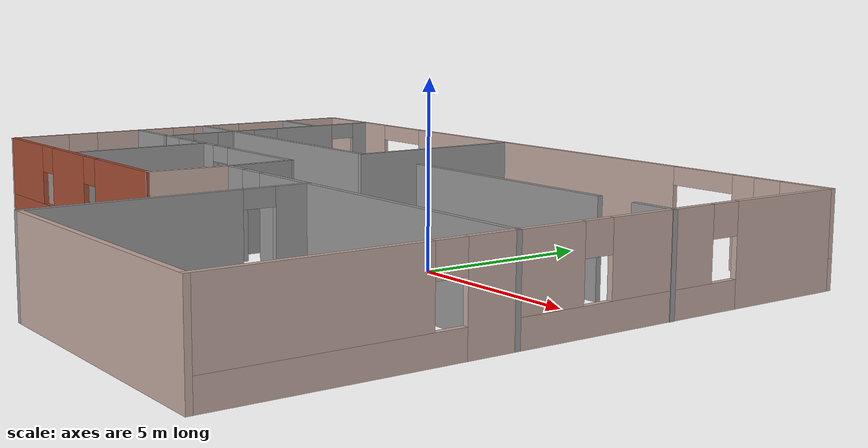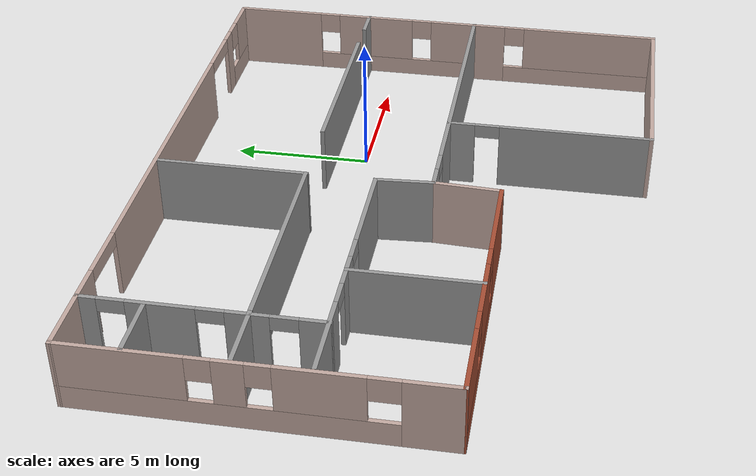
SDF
<?xml version='1.0'?>
<sdf version='1.6'>
  <model name='MyHouse'>
    <pose frame=''>-3.71945 -1.98455 0 0 -0 0</pose>
    <link name='Wall_10'>
      <pose frame=''>-8.45774 0.74582 0 0 -0 3.14159</pose>
      <visual name='Wall_10_Visual_0'>
        <pose frame=''>-1.97921 0 1.25 0 -0 0</pose>
        <geometry>
          <box>
            <size>0.791588 0.15 2.5</size>
          </box>
        </geometry>
        <material>
          <script>
            <uri>file://media/materials/scripts/gazebo.material</uri>
            <name>Gazebo/Grey</name>
          </script>
          <ambient>1 1 1 1</ambient>
        </material>
        <meta>
          <layer>0</layer>
        </meta>
      </visual>
      <collision name='Wall_10_Collision_0'>
        <geometry>
          <box>
            <size>0.791588 0.15 2.5</size>
          </box>
        </geometry>
        <pose frame=''>-1.97921 0 1.25 0 -0 0</pose>
      </collision>
      <visual name='Wall_10_Visual_1'>
        <pose frame=''>0.845794 0 1.25 0 -0 0</pose>
        <geometry>
          <box>
            <size>3.05841 0.15 2.5</size>
          </box>
        </geometry>
        <material>
          <script>
            <uri>file://media/materials/scripts/gazebo.material</uri>
            <name>Gazebo/Grey</name>
          </script>
          <ambient>1 1 1 1</ambient>
        </material>
        <meta>
          <layer>0</layer>
        </meta>
      </visual>
      <collision name='Wall_10_Collision_1'>
        <geometry>
          <box>
            <size>3.05841 0.15 2.5</size>
          </box>
        </geometry>
        <pose frame=''>0.845794 0 1.25 0 -0 0</pose>
      </collision>
      <visual name='Wall_10_Visual_2'>
        <pose frame=''>-1.13341 0 2.25 0 -0 0</pose>
        <geometry>
          <box>
            <size>0.9 0.15 0.5</size>
          </box>
        </geometry>
        <material>
          <script>
            <uri>file://media/materials/scripts/gazebo.material</uri>
            <name>Gazebo/Grey</name>
          </script>
          <ambient>1 1 1 1</ambient>
        </material>
        <meta>
          <layer>0</layer>
        </meta>
      </visual>
      <collision name='Wall_10_Collision_2'>
        <geometry>
          <box>
            <size>0.9 0.15 0.5</size>
          </box>
        </geometry>
        <pose frame=''>-1.13341 0 2.25 0 -0 0</pose>
      </collision>
    </link>
    <link name='Wall_12'>
      <pose frame=''>-3.60774 0.74582 0 0 -0 0</pose>
      <visual name='Wall_12_Visual_0'>
        <pose frame=''>-2.24932 0 1.25 0 -0 0</pose>
        <geometry>
          <box>
            <size>0.751361 0.15 2.5</size>
          </box>
        </geometry>
        <material>
          <script>
            <uri>file://media/materials/scripts/gazebo.material</uri>
            <name>Gazebo/Grey</name>
          </script>
          <ambient>1 1 1 1</ambient>
        </material>
        <meta>
          <layer>0</layer>
        </meta>
      </visual>
      <collision name='Wall_12_Collision_0'>
        <geometry>
          <box>
            <size>0.751361 0.15 2.5</size>
          </box>
        </geometry>
        <pose frame=''>-2.24932 0 1.25 0 -0 0</pose>
      </collision>
      <visual name='Wall_12_Visual_1'>
        <pose frame=''>0.82568 0 1.25 0 -0 0</pose>
        <geometry>
          <box>
            <size>3.59864 0.15 2.5</size>
          </box>
        </geometry>
        <material>
          <script>
            <uri>file://media/materials/scripts/gazebo.material</uri>
            <name>Gazebo/Grey</name>
          </script>
          <ambient>1 1 1 1</ambient>
        </material>
        <meta>
          <layer>0</layer>
        </meta>
      </visual>
      <collision name='Wall_12_Collision_1'>
        <geometry>
          <box>
            <size>3.59864 0.15 2.5</size>
          </box>
        </geometry>
        <pose frame=''>0.82568 0 1.25 0 -0 0</pose>
      </collision>
      <visual name='Wall_12_Visual_2'>
        <pose frame=''>-1.42364 0 2.25 0 -0 0</pose>
        <geometry>
          <box>
            <size>0.9 0.15 0.5</size>
          </box>
        </geometry>
        <material>
          <script>
            <uri>file://media/materials/scripts/gazebo.material</uri>
            <name>Gazebo/Grey</name>
          </script>
          <ambient>1 1 1 1</ambient>
        </material>
        <meta>
          <layer>0</layer>
        </meta>
      </visual>
      <collision name='Wall_12_Collision_2'>
        <geometry>
          <box>
            <size>0.9 0.15 0.5</size>
          </box>
        </geometry>
        <pose frame=''>-1.42364 0 2.25 0 -0 0</pose>
      </collision>
    </link>
    <link name='Wall_13'>
      <collision name='Wall_13_Collision'>
        <geometry>
          <box>
            <size>2.15429 0.15 2.5</size>
          </box>
        </geometry>
        <pose frame=''>0 0 1.25 0 -0 0</pose>
      </collision>
      <visual name='Wall_13_Visual'>
        <pose frame=''>0 0 1.25 0 -0 0</pose>
        <geometry>
          <box>
            <size>2.15429 0.15 2.5</size>
          </box>
        </geometry>
        <material>
          <script>
            <uri>file://media/materials/scripts/gazebo.material</uri>
            <name>Gazebo/Grey</name>
          </script>
          <ambient>1 1 1 1</ambient>
        </material>
        <meta>
          <layer>0</layer>
        </meta>
      </visual>
      <pose frame=''>-0.995053 -0.254364 0 0 0 -1.5082</pose>
    </link>
    <link name='Wall_15'>
      <pose frame=''>-8.75239 4.64524 0 0 -0 1.5708</pose>
      <visual name='Wall_15_Visual_0'>
        <pose frame=''>-3.49358 0 1.25 0 -0 0</pose>
        <geometry>
          <box>
            <size>1.01284 0.15 2.5</size>
          </box>
        </geometry>
        <material>
          <script>
            <uri>file://media/materials/scripts/gazebo.material</uri>
            <name>Gazebo/Grey</name>
          </script>
          <ambient>1 1 1 1</ambient>
        </material>
        <meta>
          <layer>0</layer>
        </meta>
      </visual>
      <collision name='Wall_15_Collision_0'>
        <geometry>
          <box>
            <size>1.01284 0.15 2.5</size>
          </box>
        </geometry>
        <pose frame=''>-3.49358 0 1.25 0 -0 0</pose>
      </collision>
      <visual name='Wall_15_Visual_1'>
        <pose frame=''>-1.39069 0 1.25 0 -0 0</pose>
        <geometry>
          <box>
            <size>1.39295 0.15 2.5</size>
          </box>
        </geometry>
        <material>
          <script>
            <uri>file://media/materials/scripts/gazebo.material</uri>
            <name>Gazebo/Grey</name>
          </script>
          <ambient>1 1 1 1</ambient>
        </material>
        <meta>
          <layer>0</layer>
        </meta>
      </visual>
      <collision name='Wall_15_Collision_1'>
        <geometry>
          <box>
            <size>1.39295 0.15 2.5</size>
          </box>
        </geometry>
        <pose frame=''>-1.39069 0 1.25 0 -0 0</pose>
      </collision>
      <visual name='Wall_15_Visual_2'>
        <pose frame=''>1.31458 0 1.25 0 -0 0</pose>
        <geometry>
          <box>
            <size>2.2176 0.15 2.5</size>
          </box>
        </geometry>
        <material>
          <script>
            <uri>file://media/materials/scripts/gazebo.material</uri>
            <name>Gazebo/Grey</name>
          </script>
          <ambient>1 1 1 1</ambient>
        </material>
        <meta>
          <layer>0</layer>
        </meta>
      </visual>
      <collision name='Wall_15_Collision_2'>
        <geometry>
          <box>
            <size>2.2176 0.15 2.5</size>
          </box>
        </geometry>
        <pose frame=''>1.31458 0 1.25 0 -0 0</pose>
      </collision>
      <visual name='Wall_15_Visual_3'>
        <pose frame=''>3.66169 0 1.25 0 -0 0</pose>
        <geometry>
          <box>
            <size>0.676613 0.15 2.5</size>
          </box>
        </geometry>
        <material>
          <script>
            <uri>file://media/materials/scripts/gazebo.material</uri>
            <name>Gazebo/Grey</name>
          </script>
          <ambient>1 1 1 1</ambient>
        </material>
        <meta>
          <layer>0</layer>
        </meta>
      </visual>
      <collision name='Wall_15_Collision_3'>
        <geometry>
          <box>
            <size>0.676613 0.15 2.5</size>
          </box>
        </geometry>
        <pose frame=''>3.66169 0 1.25 0 -0 0</pose>
      </collision>
      <visual name='Wall_15_Visual_4'>
        <pose frame=''>-2.53716 0 2.25 0 -0 0</pose>
        <geometry>
          <box>
            <size>0.9 0.15 0.5</size>
          </box>
        </geometry>
        <material>
          <script>
            <uri>file://media/materials/scripts/gazebo.material</uri>
            <name>Gazebo/Grey</name>
          </script>
          <ambient>1 1 1 1</ambient>
        </material>
        <meta>
          <layer>0</layer>
        </meta>
      </visual>
      <collision name='Wall_15_Collision_4'>
        <geometry>
          <box>
            <size>0.9 0.15 0.5</size>
          </box>
        </geometry>
        <pose frame=''>-2.53716 0 2.25 0 -0 0</pose>
      </collision>
      <visual name='Wall_15_Visual_5'>
        <pose frame=''>-0.244216 0 2.25 0 -0 0</pose>
        <geometry>
          <box>
            <size>0.9 0.15 0.5</size>
          </box>
        </geometry>
        <material>
          <script>
            <uri>file://media/materials/scripts/gazebo.material</uri>
            <name>Gazebo/Grey</name>
          </script>
          <ambient>1 1 1 1</ambient>
        </material>
        <meta>
          <layer>0</layer>
        </meta>
      </visual>
      <collision name='Wall_15_Collision_5'>
        <geometry>
          <box>
            <size>0.9 0.15 0.5</size>
          </box>
        </geometry>
        <pose frame=''>-0.244216 0 2.25 0 -0 0</pose>
      </collision>
      <visual name='Wall_15_Visual_6'>
        <pose frame=''>2.87339 0 2.25 0 -0 0</pose>
        <geometry>
          <box>
            <size>0.9 0.15 0.5</size>
          </box>
        </geometry>
        <material>
          <script>
            <uri>file://media/materials/scripts/gazebo.material</uri>
            <name>Gazebo/Grey</name>
          </script>
          <ambient>1 1 1 1</ambient>
        </material>
        <meta>
          <layer>0</layer>
        </meta>
      </visual>
      <collision name='Wall_15_Collision_6'>
        <geometry>
          <box>
            <size>0.9 0.15 0.5</size>
          </box>
        </geometry>
        <pose frame=''>2.87339 0 2.25 0 -0 0</pose>
      </collision>
    </link>
    <link name='Wall_17'>
      <collision name='Wall_17_Collision'>
        <geometry>
          <box>
            <size>7.75 0.15 2.5</size>
          </box>
        </geometry>
        <pose frame=''>0 0 1.25 0 -0 0</pose>
      </collision>
      <visual name='Wall_17_Visual'>
        <pose frame=''>0 0 1.25 0 -0 0</pose>
        <geometry>
          <box>
            <size>7.75 0.15 2.5</size>
          </box>
        </geometry>
        <material>
          <script>
            <uri>file://media/materials/scripts/gazebo.material</uri>
            <name>Gazebo/Grey</name>
          </script>
          <ambient>1 1 1 1</ambient>
        </material>
        <meta>
          <layer>0</layer>
        </meta>
      </visual>
      <pose frame=''>-4.87194 3.19421 0 0 -0 0</pose>
    </link>
    <link name='Wall_18'>
      <collision name='Wall_18_Collision'>
        <geometry>
          <box>
            <size>5.58045 0.15 2.5</size>
          </box>
        </geometry>
        <pose frame=''>0 0 1.25 0 -0 0</pose>
      </collision>
      <visual name='Wall_18_Visual'>
        <pose frame=''>0 0 1.25 0 -0 0</pose>
        <geometry>
          <box>
            <size>5.58045 0.15 2.5</size>
          </box>
        </geometry>
        <material>
          <script>
            <uri>file://media/materials/scripts/gazebo.material</uri>
            <name>Gazebo/Grey</name>
          </script>
          <ambient>1 1 1 1</ambient>
        </material>
        <meta>
          <layer>0</layer>
        </meta>
      </visual>
      <pose frame=''>-1.07194 5.88932 0 0 -0 1.5708</pose>
    </link>
    <link name='Wall_2'>
      <pose frame=''>-0.007362 8.59545 0 0 -0 0</pose>
      <visual name='Wall_2_Visual_0'>
        <pose frame=''>-9.24484 0 1.25 0 -0 0</pose>
        <geometry>
          <box>
            <size>3.51031 0.15 2.5</size>
          </box>
        </geometry>
        <material>
          <script>
            <uri>file://media/materials/scripts/gazebo.material</uri>
            <name>Gazebo/Grey</name>
          </script>
          <ambient>0.760784 0.662745 0.627451 1</ambient>
        </material>
        <meta>
          <layer>0</layer>
        </meta>
      </visual>
      <collision name='Wall_2_Collision_0'>
        <geometry>
          <box>
            <size>3.51031 0.15 2.5</size>
          </box>
        </geometry>
        <pose frame=''>-9.24484 0 1.25 0 -0 0</pose>
      </collision>
      <visual name='Wall_2_Visual_1'>
        <pose frame=''>0.256231 0 1.25 0 -0 0</pose>
        <geometry>
          <box>
            <size>11.4918 0.15 2.5</size>
          </box>
        </geometry>
        <material>
          <script>
            <uri>file://media/materials/scripts/gazebo.material</uri>
            <name>Gazebo/Grey</name>
          </script>
          <ambient>0.760784 0.662745 0.627451 1</ambient>
        </material>
        <meta>
          <layer>0</layer>
        </meta>
      </visual>
      <collision name='Wall_2_Collision_1'>
        <geometry>
          <box>
            <size>11.4918 0.15 2.5</size>
          </box>
        </geometry>
        <pose frame=''>0.256231 0 1.25 0 -0 0</pose>
      </collision>
      <visual name='Wall_2_Visual_2'>
        <pose frame=''>8.34893 0 1.25 0 -0 0</pose>
        <geometry>
          <box>
            <size>0.693556 0.15 2.5</size>
          </box>
        </geometry>
        <material>
          <script>
            <uri>file://media/materials/scripts/gazebo.material</uri>
            <name>Gazebo/Grey</name>
          </script>
          <ambient>0.760784 0.662745 0.627451 1</ambient>
        </material>
        <meta>
          <layer>0</layer>
        </meta>
      </visual>
      <collision name='Wall_2_Collision_2'>
        <geometry>
          <box>
            <size>0.693556 0.15 2.5</size>
          </box>
        </geometry>
        <pose frame=''>8.34893 0 1.25 0 -0 0</pose>
      </collision>
      <visual name='Wall_2_Visual_3'>
        <pose frame=''>9.84785 0 0.4 0 -0 0</pose>
        <geometry>
          <box>
            <size>2.3043 0.15 0.8</size>
          </box>
        </geometry>
        <material>
          <script>
            <uri>file://media/materials/scripts/gazebo.material</uri>
            <name>Gazebo/Grey</name>
          </script>
          <ambient>0.760784 0.662745 0.627451 1</ambient>
        </material>
        <meta>
          <layer>0</layer>
        </meta>
      </visual>
      <collision name='Wall_2_Collision_3'>
        <geometry>
          <box>
            <size>2.3043 0.15 0.8</size>
          </box>
        </geometry>
        <pose frame=''>9.84785 0 0.4 0 -0 0</pose>
      </collision>
      <visual name='Wall_2_Visual_4'>
        <pose frame=''>10.2479 0 1.65 0 -0 0</pose>
        <geometry>
          <box>
            <size>1.50429 0.15 1.7</size>
          </box>
        </geometry>
        <material>
          <script>
            <uri>file://media/materials/scripts/gazebo.material</uri>
            <name>Gazebo/Grey</name>
          </script>
          <ambient>0.760784 0.662745 0.627451 1</ambient>
        </material>
        <meta>
          <layer>0</layer>
        </meta>
      </visual>
      <collision name='Wall_2_Collision_4'>
        <geometry>
          <box>
            <size>1.50429 0.15 1.7</size>
          </box>
        </geometry>
        <pose frame=''>10.2479 0 1.65 0 -0 0</pose>
      </collision>
      <visual name='Wall_2_Visual_5'>
        <pose frame=''>9.09571 0 2.05 0 -0 0</pose>
        <geometry>
          <box>
            <size>0.8 0.15 0.9</size>
          </box>
        </geometry>
        <material>
          <script>
            <uri>file://media/materials/scripts/gazebo.material</uri>
            <name>Gazebo/Grey</name>
          </script>
          <ambient>0.760784 0.662745 0.627451 1</ambient>
        </material>
        <meta>
          <layer>0</layer>
        </meta>
      </visual>
      <collision name='Wall_2_Collision_5'>
        <geometry>
          <box>
            <size>0.8 0.15 0.9</size>
          </box>
        </geometry>
        <pose frame=''>9.09571 0 2.05 0 -0 0</pose>
      </collision>
      <visual name='Wall_2_Visual_6'>
        <pose frame=''>-6.48969 0 2.25 0 -0 0</pose>
        <geometry>
          <box>
            <size>2 0.15 0.5</size>
          </box>
        </geometry>
        <material>
          <script>
            <uri>file://media/materials/scripts/gazebo.material</uri>
            <name>Gazebo/Grey</name>
          </script>
          <ambient>0.760784 0.662745 0.627451 1</ambient>
        </material>
        <meta>
          <layer>0</layer>
        </meta>
      </visual>
      <collision name='Wall_2_Collision_6'>
        <geometry>
          <box>
            <size>2 0.15 0.5</size>
          </box>
        </geometry>
        <pose frame=''>-6.48969 0 2.25 0 -0 0</pose>
      </collision>
      <visual name='Wall_2_Visual_7'>
        <pose frame=''>7.00215 0 2.25 0 -0 0</pose>
        <geometry>
          <box>
            <size>2 0.15 0.5</size>
          </box>
        </geometry>
        <material>
          <script>
            <uri>file://media/materials/scripts/gazebo.material</uri>
            <name>Gazebo/Grey</name>
          </script>
          <ambient>0.760784 0.662745 0.627451 1</ambient>
        </material>
        <meta>
          <layer>0</layer>
        </meta>
      </visual>
      <collision name='Wall_2_Collision_7'>
        <geometry>
          <box>
            <size>2 0.15 0.5</size>
          </box>
        </geometry>
        <pose frame=''>7.00215 0 2.25 0 -0 0</pose>
      </collision>
    </link>
    <link name='Wall_20'>
      <collision name='Wall_20_Collision'>
        <geometry>
          <box>
            <size>2.25 0.15 2.5</size>
          </box>
        </geometry>
        <pose frame=''>0 0 1.25 0 -0 0</pose>
      </collision>
      <visual name='Wall_20_Visual'>
        <pose frame=''>0 0 1.25 0 -0 0</pose>
        <geometry>
          <box>
            <size>2.25 0.15 2.5</size>
          </box>
        </geometry>
        <material>
          <script>
            <uri>file://media/materials/scripts/gazebo.material</uri>
            <name>Gazebo/Grey</name>
          </script>
          <ambient>1 1 1 1</ambient>
        </material>
        <meta>
          <layer>0</layer>
        </meta>
      </visual>
      <pose frame=''>-9.72194 3.19421 0 0 -0 3.14159</pose>
    </link>
    <link name='Wall_23'>
      <collision name='Wall_23_Collision'>
        <geometry>
          <box>
            <size>2.25 0.15 2.5</size>
          </box>
        </geometry>
        <pose frame=''>0 0 1.25 0 -0 0</pose>
      </collision>
      <visual name='Wall_23_Visual'>
        <pose frame=''>0 0 1.25 0 -0 0</pose>
        <geometry>
          <box>
            <size>2.25 0.15 2.5</size>
          </box>
        </geometry>
        <material>
          <script>
            <uri>file://media/materials/scripts/gazebo.material</uri>
            <name>Gazebo/Grey</name>
          </script>
          <ambient>1 1 1 1</ambient>
        </material>
        <meta>
          <layer>0</layer>
        </meta>
      </visual>
      <pose frame=''>-9.8024 6.45261 0 0 -0 3.14159</pose>
    </link>
    <link name='Wall_25'>
      <collision name='Wall_25_Collision'>
        <geometry>
          <box>
            <size>7 0.15 2.5</size>
          </box>
        </geometry>
        <pose frame=''>0 0 1.25 0 -0 0</pose>
      </collision>
      <visual name='Wall_25_Visual'>
        <pose frame=''>0 0 1.25 0 -0 0</pose>
        <geometry>
          <box>
            <size>7 0.15 2.5</size>
          </box>
        </geometry>
        <material>
          <script>
            <uri>file://media/materials/scripts/gazebo.material</uri>
            <name>Gazebo/Grey</name>
          </script>
          <ambient>1 1 1 1</ambient>
        </material>
        <meta>
          <layer>0</layer>
        </meta>
      </visual>
      <pose frame=''>5.17189 3.19421 0 0 -0 0</pose>
    </link>
    <link name='Wall_27'>
      <collision name='Wall_27_Collision'>
        <geometry>
          <box>
            <size>1.25 0.15 2.5</size>
          </box>
        </geometry>
        <pose frame=''>0 0 1.25 0 -0 0</pose>
      </collision>
      <visual name='Wall_27_Visual'>
        <pose frame=''>0 0 1.25 0 -0 0</pose>
        <geometry>
          <box>
            <size>1.25 0.15 2.5</size>
          </box>
        </geometry>
        <material>
          <script>
            <uri>file://media/materials/scripts/gazebo.material</uri>
            <name>Gazebo/Grey</name>
          </script>
          <ambient>1 1 1 1</ambient>
        </material>
        <meta>
          <layer>0</layer>
        </meta>
      </visual>
      <pose frame=''>10.3825 3.17409 0 0 -0 0</pose>
    </link>
    <link name='Wall_29'>
      <pose frame=''>10.9176 -4.92955 0 0 0 -1.5708</pose>
      <visual name='Wall_29_Visual_0'>
        <pose frame=''>-3.06879 0 1.25 0 -0 0</pose>
        <geometry>
          <box>
            <size>1.36242 0.15 2.5</size>
          </box>
        </geometry>
        <material>
          <script>
            <uri>file://media/materials/scripts/gazebo.material</uri>
            <name>Gazebo/Grey</name>
          </script>
          <ambient>0.760784 0.662745 0.627451 1</ambient>
        </material>
        <meta>
          <layer>0</layer>
        </meta>
      </visual>
      <collision name='Wall_29_Collision_0'>
        <geometry>
          <box>
            <size>1.36242 0.15 2.5</size>
          </box>
        </geometry>
        <pose frame=''>-3.06879 0 1.25 0 -0 0</pose>
      </collision>
      <visual name='Wall_29_Visual_1'>
        <pose frame=''>0.681209 0 0.35 0 -0 0</pose>
        <geometry>
          <box>
            <size>6.13758 0.15 0.7</size>
          </box>
        </geometry>
        <material>
          <script>
            <uri>file://media/materials/scripts/gazebo.material</uri>
            <name>Gazebo/Grey</name>
          </script>
          <ambient>0.760784 0.662745 0.627451 1</ambient>
        </material>
        <meta>
          <layer>0</layer>
        </meta>
      </visual>
      <collision name='Wall_29_Collision_1'>
        <geometry>
          <box>
            <size>6.13758 0.15 0.7</size>
          </box>
        </geometry>
        <pose frame=''>0.681209 0 0.35 0 -0 0</pose>
      </collision>
      <visual name='Wall_29_Visual_2'>
        <pose frame=''>1.08121 0 1.6 0 -0 0</pose>
        <geometry>
          <box>
            <size>5.33758 0.15 1.8</size>
          </box>
        </geometry>
        <material>
          <script>
            <uri>file://media/materials/scripts/gazebo.material</uri>
            <name>Gazebo/Grey</name>
          </script>
          <ambient>0.760784 0.662745 0.627451 1</ambient>
        </material>
        <meta>
          <layer>0</layer>
        </meta>
      </visual>
      <collision name='Wall_29_Collision_2'>
        <geometry>
          <box>
            <size>5.33758 0.15 1.8</size>
          </box>
        </geometry>
        <pose frame=''>1.08121 0 1.6 0 -0 0</pose>
      </collision>
      <visual name='Wall_29_Visual_3'>
        <pose frame=''>-1.98758 0 2.1 0 -0 0</pose>
        <geometry>
          <box>
            <size>0.8 0.15 0.8</size>
          </box>
        </geometry>
        <material>
          <script>
            <uri>file://media/materials/scripts/gazebo.material</uri>
            <name>Gazebo/Grey</name>
          </script>
          <ambient>0.760784 0.662745 0.627451 1</ambient>
        </material>
        <meta>
          <layer>0</layer>
        </meta>
      </visual>
      <collision name='Wall_29_Collision_3'>
        <geometry>
          <box>
            <size>0.8 0.15 0.8</size>
          </box>
        </geometry>
        <pose frame=''>-1.98758 0 2.1 0 -0 0</pose>
      </collision>
    </link>
    <link name='Wall_3'>
      <pose frame=''>10.9176 3.67045 0 0 0 -1.5708</pose>
      <visual name='Wall_3_Visual_0'>
        <pose frame=''>-3.27648 0 1.25 0 -0 0</pose>
        <geometry>
          <box>
            <size>3.44705 0.15 2.5</size>
          </box>
        </geometry>
        <material>
          <script>
            <uri>file://media/materials/scripts/gazebo.material</uri>
            <name>Gazebo/Grey</name>
          </script>
          <ambient>0.760784 0.662745 0.627451 1</ambient>
        </material>
        <meta>
          <layer>0</layer>
        </meta>
      </visual>
      <collision name='Wall_3_Collision_0'>
        <geometry>
          <box>
            <size>3.44705 0.15 2.5</size>
          </box>
        </geometry>
        <pose frame=''>-3.27648 0 1.25 0 -0 0</pose>
      </collision>
      <visual name='Wall_3_Visual_1'>
        <pose frame=''>1.72352 0 0.35 0 -0 0</pose>
        <geometry>
          <box>
            <size>6.55295 0.15 0.7</size>
          </box>
        </geometry>
        <material>
          <script>
            <uri>file://media/materials/scripts/gazebo.material</uri>
            <name>Gazebo/Grey</name>
          </script>
          <ambient>0.760784 0.662745 0.627451 1</ambient>
        </material>
        <meta>
          <layer>0</layer>
        </meta>
      </visual>
      <collision name='Wall_3_Collision_1'>
        <geometry>
          <box>
            <size>6.55295 0.15 0.7</size>
          </box>
        </geometry>
        <pose frame=''>1.72352 0 0.35 0 -0 0</pose>
      </collision>
      <visual name='Wall_3_Visual_2'>
        <pose frame=''>0.788006 0 1.6 0 -0 0</pose>
        <geometry>
          <box>
            <size>3.08192 0.15 1.8</size>
          </box>
        </geometry>
        <material>
          <script>
            <uri>file://media/materials/scripts/gazebo.material</uri>
            <name>Gazebo/Grey</name>
          </script>
          <ambient>0.760784 0.662745 0.627451 1</ambient>
        </material>
        <meta>
          <layer>0</layer>
        </meta>
      </visual>
      <collision name='Wall_3_Collision_2'>
        <geometry>
          <box>
            <size>3.08192 0.15 1.8</size>
          </box>
        </geometry>
        <pose frame=''>0.788006 0 1.6 0 -0 0</pose>
      </collision>
      <visual name='Wall_3_Visual_3'>
        <pose frame=''>4.06448 0 1.6 0 -0 0</pose>
        <geometry>
          <box>
            <size>1.87103 0.15 1.8</size>
          </box>
        </geometry>
        <material>
          <script>
            <uri>file://media/materials/scripts/gazebo.material</uri>
            <name>Gazebo/Grey</name>
          </script>
          <ambient>0.760784 0.662745 0.627451 1</ambient>
        </material>
        <meta>
          <layer>0</layer>
        </meta>
      </visual>
      <collision name='Wall_3_Collision_3'>
        <geometry>
          <box>
            <size>1.87103 0.15 1.8</size>
          </box>
        </geometry>
        <pose frame=''>4.06448 0 1.6 0 -0 0</pose>
      </collision>
      <visual name='Wall_3_Visual_4'>
        <pose frame=''>-1.15295 0 2.1 0 -0 0</pose>
        <geometry>
          <box>
            <size>0.8 0.15 0.8</size>
          </box>
        </geometry>
        <material>
          <script>
            <uri>file://media/materials/scripts/gazebo.material</uri>
            <name>Gazebo/Grey</name>
          </script>
          <ambient>0.760784 0.662745 0.627451 1</ambient>
        </material>
        <meta>
          <layer>0</layer>
        </meta>
      </visual>
      <collision name='Wall_3_Collision_4'>
        <geometry>
          <box>
            <size>0.8 0.15 0.8</size>
          </box>
        </geometry>
        <pose frame=''>-1.15295 0 2.1 0 -0 0</pose>
      </collision>
      <visual name='Wall_3_Visual_5'>
        <pose frame=''>2.72897 0 2.1 0 -0 0</pose>
        <geometry>
          <box>
            <size>0.8 0.15 0.8</size>
          </box>
        </geometry>
        <material>
          <script>
            <uri>file://media/materials/scripts/gazebo.material</uri>
            <name>Gazebo/Grey</name>
          </script>
          <ambient>0.760784 0.662745 0.627451 1</ambient>
        </material>
        <meta>
          <layer>0</layer>
        </meta>
      </visual>
      <collision name='Wall_3_Collision_5'>
        <geometry>
          <box>
            <size>0.8 0.15 0.8</size>
          </box>
        </geometry>
        <pose frame=''>2.72897 0 2.1 0 -0 0</pose>
      </collision>
    </link>
    <link name='Wall_30'>
      <collision name='Wall_30_Collision'>
        <geometry>
          <box>
            <size>8 0.15 2.5</size>
          </box>
        </geometry>
        <pose frame=''>0 0 1.25 0 -0 0</pose>
      </collision>
      <visual name='Wall_30_Visual'>
        <pose frame=''>0 0 1.25 0 -0 0</pose>
        <geometry>
          <box>
            <size>8 0.15 2.5</size>
          </box>
        </geometry>
        <material>
          <script>
            <uri>file://media/materials/scripts/gazebo.material</uri>
            <name>Gazebo/Grey</name>
          </script>
          <ambient>0.760784 0.662745 0.627451 1</ambient>
        </material>
        <meta>
          <layer>0</layer>
        </meta>
      </visual>
      <pose frame=''>6.99264 -8.60455 0 0 -0 3.14159</pose>
    </link>
    <link name='Wall_31'>
      <pose frame=''>3.06764 -4.92955 0 0 -0 1.5708</pose>
      <visual name='Wall_31_Visual_0'>
        <pose frame=''>-0.966637 0 1.25 0 -0 0</pose>
        <geometry>
          <box>
            <size>5.56673 0.15 2.5</size>
          </box>
        </geometry>
        <material>
          <script>
            <uri>file://media/materials/scripts/gazebo.material</uri>
            <name>Gazebo/Grey</name>
          </script>
          <ambient>1 1 1 1</ambient>
        </material>
        <meta>
          <layer>0</layer>
        </meta>
      </visual>
      <collision name='Wall_31_Collision_0'>
        <geometry>
          <box>
            <size>5.56673 0.15 2.5</size>
          </box>
        </geometry>
        <pose frame=''>-0.966637 0 1.25 0 -0 0</pose>
      </collision>
      <visual name='Wall_31_Visual_1'>
        <pose frame=''>3.23336 0 1.25 0 -0 0</pose>
        <geometry>
          <box>
            <size>1.03327 0.15 2.5</size>
          </box>
        </geometry>
        <material>
          <script>
            <uri>file://media/materials/scripts/gazebo.material</uri>
            <name>Gazebo/Grey</name>
          </script>
          <ambient>1 1 1 1</ambient>
        </material>
        <meta>
          <layer>0</layer>
        </meta>
      </visual>
      <collision name='Wall_31_Collision_1'>
        <geometry>
          <box>
            <size>1.03327 0.15 2.5</size>
          </box>
        </geometry>
        <pose frame=''>3.23336 0 1.25 0 -0 0</pose>
      </collision>
      <visual name='Wall_31_Visual_2'>
        <pose frame=''>2.26673 0 2.25 0 -0 0</pose>
        <geometry>
          <box>
            <size>0.9 0.15 0.5</size>
          </box>
        </geometry>
        <material>
          <script>
            <uri>file://media/materials/scripts/gazebo.material</uri>
            <name>Gazebo/Grey</name>
          </script>
          <ambient>1 1 1 1</ambient>
        </material>
        <meta>
          <layer>0</layer>
        </meta>
      </visual>
      <collision name='Wall_31_Collision_2'>
        <geometry>
          <box>
            <size>0.9 0.15 0.5</size>
          </box>
        </geometry>
        <pose frame=''>2.26673 0 2.25 0 -0 0</pose>
      </collision>
    </link>
    <link name='Wall_4'>
      <pose frame=''>4.99264 -1.25455 0 0 -0 3.14159</pose>
      <visual name='Wall_4_Visual_0'>
        <pose frame=''>-0.913533 0 1.25 0 -0 0</pose>
        <geometry>
          <box>
            <size>10.1729 0.15 2.5</size>
          </box>
        </geometry>
        <material>
          <script>
            <uri>file://media/materials/scripts/gazebo.material</uri>
            <name>Gazebo/Grey</name>
          </script>
          <ambient>1 1 1 1</ambient>
        </material>
        <meta>
          <layer>0</layer>
        </meta>
      </visual>
      <collision name='Wall_4_Collision_0'>
        <geometry>
          <box>
            <size>10.1729 0.15 2.5</size>
          </box>
        </geometry>
        <pose frame=''>-0.913533 0 1.25 0 -0 0</pose>
      </collision>
      <visual name='Wall_4_Visual_1'>
        <pose frame=''>5.53647 0 1.25 0 -0 0</pose>
        <geometry>
          <box>
            <size>0.927067 0.15 2.5</size>
          </box>
        </geometry>
        <material>
          <script>
            <uri>file://media/materials/scripts/gazebo.material</uri>
            <name>Gazebo/Grey</name>
          </script>
          <ambient>1 1 1 1</ambient>
        </material>
        <meta>
          <layer>0</layer>
        </meta>
      </visual>
      <collision name='Wall_4_Collision_1'>
        <geometry>
          <box>
            <size>0.927067 0.15 2.5</size>
          </box>
        </geometry>
        <pose frame=''>5.53647 0 1.25 0 -0 0</pose>
      </collision>
      <visual name='Wall_4_Visual_2'>
        <pose frame=''>4.62293 0 2.25 0 -0 0</pose>
        <geometry>
          <box>
            <size>0.9 0.15 0.5</size>
          </box>
        </geometry>
        <material>
          <script>
            <uri>file://media/materials/scripts/gazebo.material</uri>
            <name>Gazebo/Grey</name>
          </script>
          <ambient>1 1 1 1</ambient>
        </material>
        <meta>
          <layer>0</layer>
        </meta>
      </visual>
      <collision name='Wall_4_Collision_2'>
        <geometry>
          <box>
            <size>0.9 0.15 0.5</size>
          </box>
        </geometry>
        <pose frame=''>4.62293 0 2.25 0 -0 0</pose>
      </collision>
    </link>
    <link name='Wall_5'>
      <collision name='Wall_5_Collision'>
        <geometry>
          <box>
            <size>2.50297 0.15 2.5</size>
          </box>
        </geometry>
        <pose frame=''>0 0 1.25 0 -0 0</pose>
      </collision>
      <visual name='Wall_5_Visual'>
        <pose frame=''>0 0 1.25 0 -0 0</pose>
        <geometry>
          <box>
            <size>2.50297 0.15 2.5</size>
          </box>
        </geometry>
        <material>
          <script>
            <uri>file://media/materials/scripts/gazebo.material</uri>
            <name>Gazebo/Grey</name>
          </script>
          <ambient>0.760784 0.662745 0.627451 1</ambient>
        </material>
        <meta>
          <layer>0</layer>
        </meta>
      </visual>
      <pose frame=''>-0.992458 -2.4295 0 0 0 -1.6219</pose>
    </link>
    <link name='Wall_6'>
      <pose frame=''>-5.97755 -3.60445 0 0 -0 3.14159</pose>
      <visual name='Wall_6_Visual_0'>
        <pose frame=''>-3.30088 0 1.25 0 -0 0</pose>
        <geometry>
          <box>
            <size>3.39823 0.15 2.5</size>
          </box>
        </geometry>
        <material>
          <script>
            <uri>file://media/materials/scripts/gazebo.material</uri>
            <name>Gazebo/Bricks</name>
          </script>
          <ambient>1 1 1 1</ambient>
        </material>
        <meta>
          <layer>0</layer>
        </meta>
      </visual>
      <collision name='Wall_6_Collision_0'>
        <geometry>
          <box>
            <size>3.39823 0.15 2.5</size>
          </box>
        </geometry>
        <pose frame=''>-3.30088 0 1.25 0 -0 0</pose>
      </collision>
      <visual name='Wall_6_Visual_1'>
        <pose frame=''>1.69912 0 0.35 0 -0 0</pose>
        <geometry>
          <box>
            <size>6.60177 0.15 0.7</size>
          </box>
        </geometry>
        <material>
          <script>
            <uri>file://media/materials/scripts/gazebo.material</uri>
            <name>Gazebo/Bricks</name>
          </script>
          <ambient>1 1 1 1</ambient>
        </material>
        <meta>
          <layer>0</layer>
        </meta>
      </visual>
      <collision name='Wall_6_Collision_1'>
        <geometry>
          <box>
            <size>6.60177 0.15 0.7</size>
          </box>
        </geometry>
        <pose frame=''>1.69912 0 0.35 0 -0 0</pose>
      </collision>
      <visual name='Wall_6_Visual_2'>
        <pose frame=''>0.37341 0 1.6 0 -0 0</pose>
        <geometry>
          <box>
            <size>2.35035 0.15 1.8</size>
          </box>
        </geometry>
        <material>
          <script>
            <uri>file://media/materials/scripts/gazebo.material</uri>
            <name>Gazebo/Bricks</name>
          </script>
          <ambient>1 1 1 1</ambient>
        </material>
        <meta>
          <layer>0</layer>
        </meta>
      </visual>
      <collision name='Wall_6_Collision_2'>
        <geometry>
          <box>
            <size>2.35035 0.15 1.8</size>
          </box>
        </geometry>
        <pose frame=''>0.37341 0 1.6 0 -0 0</pose>
      </collision>
      <visual name='Wall_6_Visual_3'>
        <pose frame=''>3.67429 0 1.6 0 -0 0</pose>
        <geometry>
          <box>
            <size>2.65141 0.15 1.8</size>
          </box>
        </geometry>
        <material>
          <script>
            <uri>file://media/materials/scripts/gazebo.material</uri>
            <name>Gazebo/Bricks</name>
          </script>
          <ambient>1 1 1 1</ambient>
        </material>
        <meta>
          <layer>0</layer>
        </meta>
      </visual>
      <collision name='Wall_6_Collision_3'>
        <geometry>
          <box>
            <size>2.65141 0.15 1.8</size>
          </box>
        </geometry>
        <pose frame=''>3.67429 0 1.6 0 -0 0</pose>
      </collision>
      <visual name='Wall_6_Visual_4'>
        <pose frame=''>-1.20177 0 2.1 0 -0 0</pose>
        <geometry>
          <box>
            <size>0.8 0.15 0.8</size>
          </box>
        </geometry>
        <material>
          <script>
            <uri>file://media/materials/scripts/gazebo.material</uri>
            <name>Gazebo/Bricks</name>
          </script>
          <ambient>1 1 1 1</ambient>
        </material>
        <meta>
          <layer>0</layer>
        </meta>
      </visual>
      <collision name='Wall_6_Collision_4'>
        <geometry>
          <box>
            <size>0.8 0.15 0.8</size>
          </box>
        </geometry>
        <pose frame=''>-1.20177 0 2.1 0 -0 0</pose>
      </collision>
      <visual name='Wall_6_Visual_5'>
        <pose frame=''>1.94859 0 2.1 0 -0 0</pose>
        <geometry>
          <box>
            <size>0.8 0.15 0.8</size>
          </box>
        </geometry>
        <material>
          <script>
            <uri>file://media/materials/scripts/gazebo.material</uri>
            <name>Gazebo/Bricks</name>
          </script>
          <ambient>1 1 1 1</ambient>
        </material>
        <meta>
          <layer>0</layer>
        </meta>
      </visual>
      <collision name='Wall_6_Collision_5'>
        <geometry>
          <box>
            <size>0.8 0.15 0.8</size>
          </box>
        </geometry>
        <pose frame=''>1.94859 0 2.1 0 -0 0</pose>
      </collision>
    </link>
    <link name='Wall_7'>
      <pose frame=''>-10.9175 2.4955 0 0 -0 1.57324</pose>
      <visual name='Wall_7_Visual_0'>
        <pose frame=''>-5.23558 0 1.25 0 -0 0</pose>
        <geometry>
          <box>
            <size>1.87887 0.15 2.5</size>
          </box>
        </geometry>
        <material>
          <script>
            <uri>file://media/materials/scripts/gazebo.material</uri>
            <name>Gazebo/Grey</name>
          </script>
          <ambient>0.760784 0.662745 0.627451 1</ambient>
        </material>
        <meta>
          <layer>0</layer>
        </meta>
      </visual>
      <collision name='Wall_7_Collision_0'>
        <geometry>
          <box>
            <size>1.87887 0.15 2.5</size>
          </box>
        </geometry>
        <pose frame=''>-5.23558 0 1.25 0 -0 0</pose>
      </collision>
      <visual name='Wall_7_Visual_1'>
        <pose frame=''>0.939435 0 0.425 0 -0 0</pose>
        <geometry>
          <box>
            <size>10.4712 0.15 0.85</size>
          </box>
        </geometry>
        <material>
          <script>
            <uri>file://media/materials/scripts/gazebo.material</uri>
            <name>Gazebo/Grey</name>
          </script>
          <ambient>0.760784 0.662745 0.627451 1</ambient>
        </material>
        <meta>
          <layer>0</layer>
        </meta>
      </visual>
      <collision name='Wall_7_Collision_1'>
        <geometry>
          <box>
            <size>10.4712 0.15 0.85</size>
          </box>
        </geometry>
        <pose frame=''>0.939435 0 0.425 0 -0 0</pose>
      </collision>
      <visual name='Wall_7_Visual_2'>
        <pose frame=''>-1.90728 0 1.675 0 -0 0</pose>
        <geometry>
          <box>
            <size>2.77773 0.15 1.65</size>
          </box>
        </geometry>
        <material>
          <script>
            <uri>file://media/materials/scripts/gazebo.material</uri>
            <name>Gazebo/Grey</name>
          </script>
          <ambient>0.760784 0.662745 0.627451 1</ambient>
        </material>
        <meta>
          <layer>0</layer>
        </meta>
      </visual>
      <collision name='Wall_7_Collision_2'>
        <geometry>
          <box>
            <size>2.77773 0.15 1.65</size>
          </box>
        </geometry>
        <pose frame=''>-1.90728 0 1.675 0 -0 0</pose>
      </collision>
      <visual name='Wall_7_Visual_3'>
        <pose frame=''>0.772042 0 1.675 0 -0 0</pose>
        <geometry>
          <box>
            <size>0.980926 0.15 1.65</size>
          </box>
        </geometry>
        <material>
          <script>
            <uri>file://media/materials/scripts/gazebo.material</uri>
            <name>Gazebo/Grey</name>
          </script>
          <ambient>0.760784 0.662745 0.627451 1</ambient>
        </material>
        <meta>
          <layer>0</layer>
        </meta>
      </visual>
      <collision name='Wall_7_Collision_3'>
        <geometry>
          <box>
            <size>0.980926 0.15 1.65</size>
          </box>
        </geometry>
        <pose frame=''>0.772042 0 1.675 0 -0 0</pose>
      </collision>
      <visual name='Wall_7_Visual_4'>
        <pose frame=''>4.11876 0 1.675 0 -0 0</pose>
        <geometry>
          <box>
            <size>4.11251 0.15 1.65</size>
          </box>
        </geometry>
        <material>
          <script>
            <uri>file://media/materials/scripts/gazebo.material</uri>
            <name>Gazebo/Grey</name>
          </script>
          <ambient>0.760784 0.662745 0.627451 1</ambient>
        </material>
        <meta>
          <layer>0</layer>
        </meta>
      </visual>
      <collision name='Wall_7_Collision_4'>
        <geometry>
          <box>
            <size>4.11251 0.15 1.65</size>
          </box>
        </geometry>
        <pose frame=''>4.11876 0 1.675 0 -0 0</pose>
      </collision>
      <visual name='Wall_7_Visual_5'>
        <pose frame=''>-3.79615 0 2.075 0 -0 0</pose>
        <geometry>
          <box>
            <size>1 0.15 0.85</size>
          </box>
        </geometry>
        <material>
          <script>
            <uri>file://media/materials/scripts/gazebo.material</uri>
            <name>Gazebo/Grey</name>
          </script>
          <ambient>0.760784 0.662745 0.627451 1</ambient>
        </material>
        <meta>
          <layer>0</layer>
        </meta>
      </visual>
      <collision name='Wall_7_Collision_5'>
        <geometry>
          <box>
            <size>1 0.15 0.85</size>
          </box>
        </geometry>
        <pose frame=''>-3.79615 0 2.075 0 -0 0</pose>
      </collision>
      <visual name='Wall_7_Visual_6'>
        <pose frame=''>-0.118421 0 2.075 0 -0 0</pose>
        <geometry>
          <box>
            <size>0.8 0.15 0.85</size>
          </box>
        </geometry>
        <material>
          <script>
            <uri>file://media/materials/scripts/gazebo.material</uri>
            <name>Gazebo/Grey</name>
          </script>
          <ambient>0.760784 0.662745 0.627451 1</ambient>
        </material>
        <meta>
          <layer>0</layer>
        </meta>
      </visual>
      <collision name='Wall_7_Collision_6'>
        <geometry>
          <box>
            <size>0.8 0.15 0.85</size>
          </box>
        </geometry>
        <pose frame=''>-0.118421 0 2.075 0 -0 0</pose>
      </collision>
      <visual name='Wall_7_Visual_7'>
        <pose frame=''>1.66251 0 2.075 0 -0 0</pose>
        <geometry>
          <box>
            <size>0.8 0.15 0.85</size>
          </box>
        </geometry>
        <material>
          <script>
            <uri>file://media/materials/scripts/gazebo.material</uri>
            <name>Gazebo/Grey</name>
          </script>
          <ambient>0.760784 0.662745 0.627451 1</ambient>
        </material>
        <meta>
          <layer>0</layer>
        </meta>
      </visual>
      <collision name='Wall_7_Collision_7'>
        <geometry>
          <box>
            <size>0.8 0.15 0.85</size>
          </box>
        </geometry>
        <pose frame=''>1.66251 0 2.075 0 -0 0</pose>
      </collision>
    </link>
    <link name='Wall_9'>
      <collision name='Wall_9_Collision'>
        <geometry>
          <box>
            <size>4.5 0.15 2.5</size>
          </box>
        </geometry>
        <pose frame=''>0 0 1.25 0 -0 0</pose>
      </collision>
      <visual name='Wall_9_Visual'>
        <pose frame=''>0 0 1.25 0 -0 0</pose>
        <geometry>
          <box>
            <size>4.5 0.15 2.5</size>
          </box>
        </geometry>
        <material>
          <script>
            <uri>file://media/materials/scripts/gazebo.material</uri>
            <name>Gazebo/Grey</name>
          </script>
          <ambient>1 1 1 1</ambient>
        </material>
        <meta>
          <layer>0</layer>
        </meta>
      </visual>
      <pose frame=''>-6.15775 -1.42918 0 0 -0 1.5708</pose>
    </link>
    <static>1</static>
  </model>
</sdf>
